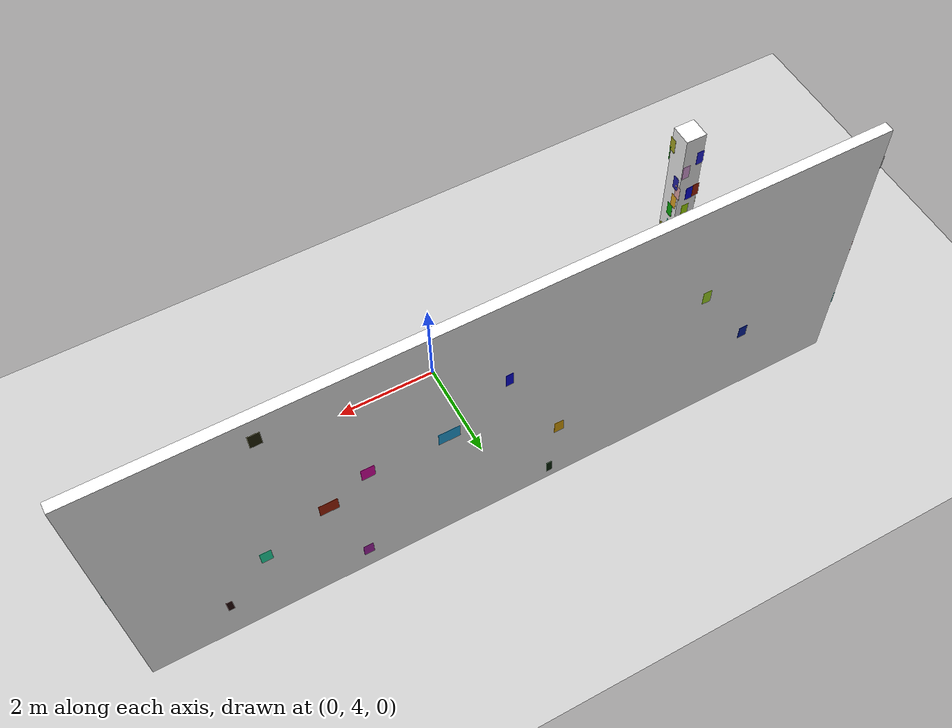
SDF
<sdf version="1.9">
 <world name="default">
  <model name="ground_plane">
   <static>true</static>
   <link name="link">
    <collision name="collision">
     <geometry><plane><normal>0 0 1</normal><size>1 1</size></plane></geometry>
    </collision>
    <visual name="visual">
     <geometry><plane><normal>0 0 1</normal><size>500 500</size></plane></geometry>
     <material>
      <ambient>0.8 0.8 0.8 1</ambient>
      <diffuse>0.8 0.8 0.8 1</diffuse>
      <specular>0.8 0.8 0.8 1</specular>
     </material>
    </visual>
    <inertial>
     <mass>1</mass>
     <inertia><ixx>1</ixx><ixy>0</ixy><ixz>0</ixz><iyy>1</iyy><iyz>0</iyz><izz>1</izz></inertia>
    </inertial>
   </link>
  </model>
  <model name="wall_north">
   <static>true</static>
   <pose>0 7 3 0 0 0</pose>
   <link name="structure">
    <collision name="collision"><geometry><box><size>14 0.2 6</size></box></geometry></collision>
    <visual name="surface">
     <geometry><box><size>14 0.2 6</size></box></geometry>
     <material>
      <ambient>1 1 1 1</ambient>
      <diffuse>1 1 1 1</diffuse>
      <pbr>
       <metal>
        <albedo_map>model://warehouse_textures/materials/textures/wall_north.png</albedo_map>
        <metalness>0</metalness>
        <roughness>1</roughness>
       </metal>
      </pbr>
     </material>
    </visual>
    <visual name="feature_0_0">
     <pose>-7.002 0.05740399791249655 0.7025036751725389 0 0 0</pose>
     <geometry><box><size>0.004 0.06999999999999999 0.3</size></box></geometry>
     <material><ambient>0.95 0.15 0.04 1</ambient><diffuse>0.95 0.15 0.04 1</diffuse></material>
    </visual>
    <visual name="feature_0_1">
     <pose>-7.002 0.07854383397790567 2.2538727229539655 0 0 0</pose>
     <geometry><box><size>0.004 0.06999999999999999 0.3</size></box></geometry>
     <material><ambient>0.04 0.04 0.04 1</ambient><diffuse>0.04 0.04 0.04 1</diffuse></material>
    </visual>
    <visual name="feature_0_2">
     <pose>-7.002 -0.050748433006339494 2.5971247547386653 0 0 0</pose>
     <geometry><box><size>0.004 0.06999999999999999 0.3</size></box></geometry>
     <material><ambient>0.7 0.15 0.7 1</ambient><diffuse>0.7 0.15 0.7 1</diffuse></material>
    </visual>
    <visual name="feature_0_3">
     <pose>-7.002 0.07319288169317882 -1.4738854698375377 0 0 0</pose>
     <geometry><box><size>0.004 0.06999999999999999 0.3</size></box></geometry>
     <material><ambient>0.15 0.7 0.7 1</ambient><diffuse>0.15 0.7 0.7 1</diffuse></material>
    </visual>
    <visual name="feature_0_4">
     <pose>-7.002 0.02419814084115028 0.8926612303974193 0 0 0</pose>
     <geometry><box><size>0.004 0.06999999999999999 0.3</size></box></geometry>
     <material><ambient>0.7 0.7 0.7 1</ambient><diffuse>0.7 0.7 0.7 1</diffuse></material>
    </visual>
    <visual name="feature_0_5">
     <pose>-7.002 -0.01561939305149082 -1.4772465535562793 0 0 0</pose>
     <geometry><box><size>0.004 0.06999999999999999 0.3</size></box></geometry>
     <material><ambient>0.95 0.7 0.7 1</ambient><diffuse>0.95 0.7 0.7 1</diffuse></material>
    </visual>
    <visual name="feature_0_6">
     <pose>-7.002 -0.03776069096096815 2.3207784220638707 0 0 0</pose>
     <geometry><box><size>0.004 0.06999999999999999 0.3</size></box></geometry>
     <material><ambient>0.15 0.95 0.04 1</ambient><diffuse>0.15 0.95 0.04 1</diffuse></material>
    </visual>
    <visual name="feature_0_7">
     <pose>-7.002 -0.06937758499440702 2.1350625783068047 0 0 0</pose>
     <geometry><box><size>0.004 0.06999999999999999 0.3</size></box></geometry>
     <material><ambient>0.7 0.04 0.7 1</ambient><diffuse>0.7 0.04 0.7 1</diffuse></material>
    </visual>
    <visual name="feature_0_8">
     <pose>-7.002 -0.005494628617869715 0.6742356440841863 0 0 0</pose>
     <geometry><box><size>0.004 0.06999999999999999 0.3</size></box></geometry>
     <material><ambient>0.15 0.7 0.15 1</ambient><diffuse>0.15 0.7 0.15 1</diffuse></material>
    </visual>
    <visual name="feature_0_9">
     <pose>-7.002 0.06492972701412435 0.06277169505868763 0 0 0</pose>
     <geometry><box><size>0.004 0.06999999999999999 0.3</size></box></geometry>
     <material><ambient>0.7 0.04 0.04 1</ambient><diffuse>0.7 0.04 0.04 1</diffuse></material>
    </visual>
    <visual name="feature_0_10">
     <pose>-7.002 0.03187456365895723 1.5432750982797598 0 0 0</pose>
     <geometry><box><size>0.004 0.06999999999999999 0.3</size></box></geometry>
     <material><ambient>0.7 0.15 0.95 1</ambient><diffuse>0.7 0.15 0.95 1</diffuse></material>
    </visual>
    <visual name="feature_0_11">
     <pose>-7.002 -0.045730328586155645 -0.6271222171113213 0 0 0</pose>
     <geometry><box><size>0.004 0.06999999999999999 0.3</size></box></geometry>
     <material><ambient>0.95 0.7 0.04 1</ambient><diffuse>0.95 0.7 0.04 1</diffuse></material>
    </visual>
    <visual name="feature_1_0">
     <pose>7.002 0.03522446831923705 1.2735736602150443 0 0 0</pose>
     <geometry><box><size>0.004 0.06999999999999999 0.3</size></box></geometry>
     <material><ambient>0.04 0.04 0.15 1</ambient><diffuse>0.04 0.04 0.15 1</diffuse></material>
    </visual>
    <visual name="feature_1_1">
     <pose>7.002 -0.0469776455105717 0.9024821809548937 0 0 0</pose>
     <geometry><box><size>0.004 0.06999999999999999 0.3</size></box></geometry>
     <material><ambient>0.04 0.04 0.04 1</ambient><diffuse>0.04 0.04 0.04 1</diffuse></material>
    </visual>
    <visual name="feature_1_2">
     <pose>7.002 -0.08157546014427244 1.9879936328129517 0 0 0</pose>
     <geometry><box><size>0.004 0.06999999999999999 0.3</size></box></geometry>
     <material><ambient>0.04 0.95 0.95 1</ambient><diffuse>0.04 0.95 0.95 1</diffuse></material>
    </visual>
    <visual name="feature_1_3">
     <pose>7.002 -0.0359489471036907 -1.746866420652428 0 0 0</pose>
     <geometry><box><size>0.004 0.06999999999999999 0.3</size></box></geometry>
     <material><ambient>0.7 0.7 0.95 1</ambient><diffuse>0.7 0.7 0.95 1</diffuse></material>
    </visual>
    <visual name="feature_1_4">
     <pose>7.002 0.047225878332427765 -0.38483222295266684 0 0 0</pose>
     <geometry><box><size>0.004 0.06999999999999999 0.3</size></box></geometry>
     <material><ambient>0.15 0.95 0.95 1</ambient><diffuse>0.15 0.95 0.95 1</diffuse></material>
    </visual>
    <visual name="feature_1_5">
     <pose>7.002 -0.00879384942152947 -1.5133206622587514 0 0 0</pose>
     <geometry><box><size>0.004 0.06999999999999999 0.3</size></box></geometry>
     <material><ambient>0.04 0.95 0.7 1</ambient><diffuse>0.04 0.95 0.7 1</diffuse></material>
    </visual>
    <visual name="feature_1_6">
     <pose>7.002 0.0777051902753262 0.13805254826223035 0 0 0</pose>
     <geometry><box><size>0.004 0.06999999999999999 0.3</size></box></geometry>
     <material><ambient>0.7 0.95 0.95 1</ambient><diffuse>0.7 0.95 0.95 1</diffuse></material>
    </visual>
    <visual name="feature_1_7">
     <pose>7.002 0.0215522584049017 0.054730310761432754 0 0 0</pose>
     <geometry><box><size>0.004 0.06999999999999999 0.3</size></box></geometry>
     <material><ambient>0.15 0.04 0.7 1</ambient><diffuse>0.15 0.04 0.7 1</diffuse></material>
    </visual>
    <visual name="feature_1_8">
     <pose>7.002 0.03341609340743347 0.1774305171533701 0 0 0</pose>
     <geometry><box><size>0.004 0.06999999999999999 0.3</size></box></geometry>
     <material><ambient>0.04 0.95 0.15 1</ambient><diffuse>0.04 0.95 0.15 1</diffuse></material>
    </visual>
    <visual name="feature_1_9">
     <pose>7.002 -0.018324491610264435 2.0514677380727084 0 0 0</pose>
     <geometry><box><size>0.004 0.06999999999999999 0.3</size></box></geometry>
     <material><ambient>0.04 0.04 0.95 1</ambient><diffuse>0.04 0.04 0.95 1</diffuse></material>
    </visual>
    <visual name="feature_1_10">
     <pose>7.002 -0.021048834978753914 1.1123216580747055 0 0 0</pose>
     <geometry><box><size>0.004 0.06999999999999999 0.3</size></box></geometry>
     <material><ambient>0.15 0.15 0.15 1</ambient><diffuse>0.15 0.15 0.15 1</diffuse></material>
    </visual>
    <visual name="feature_1_11">
     <pose>7.002 -0.020994369180686576 -0.9567640208396138 0 0 0</pose>
     <geometry><box><size>0.004 0.06999999999999999 0.3</size></box></geometry>
     <material><ambient>0.95 0.15 0.15 1</ambient><diffuse>0.95 0.15 0.15 1</diffuse></material>
    </visual>
    <visual name="feature_2_0">
     <pose>-3.7463705665134444 -0.10200000000000001 1.6719955134625675 0 0 0</pose>
     <geometry><box><size>0.3448776181266677 0.004 0.3</size></box></geometry>
     <material><ambient>0.04 0.7 0.7 1</ambient><diffuse>0.04 0.7 0.7 1</diffuse></material>
    </visual>
    <visual name="feature_2_1">
     <pose>-4.87564520115154 -0.10200000000000001 1.7861467148703136 0 0 0</pose>
     <geometry><box><size>0.1276775238052339 0.004 0.3</size></box></geometry>
     <material><ambient>0.15 0.7 0.95 1</ambient><diffuse>0.15 0.7 0.95 1</diffuse></material>
    </visual>
    <visual name="feature_2_2">
     <pose>4.841366774784601 -0.10200000000000001 -1.6677762424896379 0 0 0</pose>
     <geometry><box><size>0.37165318680444903 0.004 0.3</size></box></geometry>
     <material><ambient>0.95 0.04 0.04 1</ambient><diffuse>0.95 0.04 0.04 1</diffuse></material>
    </visual>
    <visual name="feature_2_3">
     <pose>-0.4796735420358935 -0.10200000000000001 -1.5064770531862461 0 0 0</pose>
     <geometry><box><size>0.3642524153653406 0.004 0.3</size></box></geometry>
     <material><ambient>0.15 0.04 0.15 1</ambient><diffuse>0.15 0.04 0.15 1</diffuse></material>
    </visual>
    <visual name="feature_2_4">
     <pose>-0.3446644241147494 -0.10200000000000001 0.574764268523206 0 0 0</pose>
     <geometry><box><size>0.12782794762885477 0.004 0.3</size></box></geometry>
     <material><ambient>0.7 0.95 0.95 1</ambient><diffuse>0.7 0.95 0.95 1</diffuse></material>
    </visual>
    <visual name="feature_2_5">
     <pose>-0.9417978065136889 -0.10200000000000001 -2.2360110182364714 0 0 0</pose>
     <geometry><box><size>0.39611606082923 0.004 0.3</size></box></geometry>
     <material><ambient>0.15 0.15 0.7 1</ambient><diffuse>0.15 0.15 0.7 1</diffuse></material>
    </visual>
    <visual name="feature_2_6">
     <pose>-0.8678799756750291 -0.10200000000000001 1.8241203898199858 0 0 0</pose>
     <geometry><box><size>0.14542062047875087 0.004 0.3</size></box></geometry>
     <material><ambient>0.04 0.04 0.15 1</ambient><diffuse>0.04 0.04 0.15 1</diffuse></material>
    </visual>
    <visual name="feature_2_7">
     <pose>-1.7576227178929766 -0.10200000000000001 -0.32648244934040216 0 0 0</pose>
     <geometry><box><size>0.2118109170490709 0.004 0.3</size></box></geometry>
     <material><ambient>0.15 0.95 0.15 1</ambient><diffuse>0.15 0.95 0.15 1</diffuse></material>
    </visual>
    <visual name="feature_2_8">
     <pose>-5.854685572844656 -0.10200000000000001 -1.5402346275416843 0 0 0</pose>
     <geometry><box><size>0.1568972919745467 0.004 0.3</size></box></geometry>
     <material><ambient>0.7 0.04 0.7 1</ambient><diffuse>0.7 0.04 0.7 1</diffuse></material>
    </visual>
    <visual name="feature_2_9">
     <pose>-4.002903347911203 -0.10200000000000001 0.7465170212490646 0 0 0</pose>
     <geometry><box><size>0.3693178337186339 0.004 0.3</size></box></geometry>
     <material><ambient>0.95 0.7 0.95 1</ambient><diffuse>0.95 0.7 0.95 1</diffuse></material>
    </visual>
    <visual name="feature_2_10">
     <pose>4.446334056606893 -0.10200000000000001 2.597757033441134 0 0 0</pose>
     <geometry><box><size>0.33266853110518313 0.004 0.3</size></box></geometry>
     <material><ambient>0.15 0.95 0.7 1</ambient><diffuse>0.15 0.95 0.7 1</diffuse></material>
    </visual>
    <visual name="feature_2_11">
     <pose>4.964333592438792 -0.10200000000000001 2.4120357996076764 0 0 0</pose>
     <geometry><box><size>0.3133948943335935 0.004 0.3</size></box></geometry>
     <material><ambient>0.15 0.04 0.7 1</ambient><diffuse>0.15 0.04 0.7 1</diffuse></material>
    </visual>
    <visual name="feature_3_0">
     <pose>1.1282435638475423 0.10200000000000001 0.14423615194003592 0 0 0</pose>
     <geometry><box><size>0.3955038056316935 0.004 0.3</size></box></geometry>
     <material><ambient>0.15 0.7 0.95 1</ambient><diffuse>0.15 0.7 0.95 1</diffuse></material>
    </visual>
    <visual name="feature_3_1">
     <pose>-4.857796091694734 0.10200000000000001 -1.1142142219452753 0 0 0</pose>
     <geometry><box><size>0.1734927756511203 0.004 0.3</size></box></geometry>
     <material><ambient>0.04 0.15 0.7 1</ambient><diffuse>0.04 0.15 0.7 1</diffuse></material>
    </visual>
    <visual name="feature_3_2">
     <pose>-0.986825706234459 0.10200000000000001 -1.3138108848722216 0 0 0</pose>
     <geometry><box><size>0.18919522284882473 0.004 0.3</size></box></geometry>
     <material><ambient>0.95 0.7 0.04 1</ambient><diffuse>0.95 0.7 0.04 1</diffuse></material>
    </visual>
    <visual name="feature_3_3">
     <pose>2.5884112058253175 0.10200000000000001 0.1823241996053926 0 0 0</pose>
     <geometry><box><size>0.24418146115547687 0.004 0.3</size></box></geometry>
     <material><ambient>0.95 0.04 0.7 1</ambient><diffuse>0.95 0.04 0.7 1</diffuse></material>
    </visual>
    <visual name="feature_3_4">
     <pose>4.114185387368543 0.10200000000000001 2.5141208712715315 0 0 0</pose>
     <geometry><box><size>0.19915672047099398 0.004 0.3</size></box></geometry>
     <material><ambient>0.15 0.15 0.04 1</ambient><diffuse>0.15 0.15 0.04 1</diffuse></material>
    </visual>
    <visual name="feature_3_5">
     <pose>-3.805344522671366 0.10200000000000001 0.6368814556220714 0 0 0</pose>
     <geometry><box><size>0.16552342569710427 0.004 0.3</size></box></geometry>
     <material><ambient>0.7 0.95 0.15 1</ambient><diffuse>0.7 0.95 0.15 1</diffuse></material>
    </visual>
    <visual name="feature_3_6">
     <pose>3.3352210802083855 0.10200000000000001 -0.3038700329918118 0 0 0</pose>
     <geometry><box><size>0.3380992009920988 0.004 0.3</size></box></geometry>
     <material><ambient>0.7 0.15 0.04 1</ambient><diffuse>0.7 0.15 0.04 1</diffuse></material>
    </visual>
    <visual name="feature_3_7">
     <pose>2.8326043910910697 0.10200000000000001 -2.389874496279892 0 0 0</pose>
     <geometry><box><size>0.19349118028708032 0.004 0.3</size></box></geometry>
     <material><ambient>0.7 0.15 0.7 1</ambient><diffuse>0.7 0.15 0.7 1</diffuse></material>
    </visual>
    <visual name="feature_3_8">
     <pose>5.371310928173304 0.10200000000000001 -1.984964379111334 0 0 0</pose>
     <geometry><box><size>0.11080823919699212 0.004 0.3</size></box></geometry>
     <material><ambient>0.15 0.04 0.04 1</ambient><diffuse>0.15 0.04 0.04 1</diffuse></material>
    </visual>
    <visual name="feature_3_9">
     <pose>-0.8280257225982046 0.10200000000000001 -2.6286080882410996 0 0 0</pose>
     <geometry><box><size>0.11757383931301915 0.004 0.3</size></box></geometry>
     <material><ambient>0.04 0.15 0.04 1</ambient><diffuse>0.04 0.15 0.04 1</diffuse></material>
    </visual>
    <visual name="feature_3_10">
     <pose>0.014371656385049114 0.10200000000000001 0.961100657873351 0 0 0</pose>
     <geometry><box><size>0.13675560995941782 0.004 0.3</size></box></geometry>
     <material><ambient>0.04 0.04 0.95 1</ambient><diffuse>0.04 0.04 0.95 1</diffuse></material>
    </visual>
    <visual name="feature_3_11">
     <pose>4.531343988861354 0.10200000000000001 -0.9169683445239627 0 0 0</pose>
     <geometry><box><size>0.20477298006318828 0.004 0.3</size></box></geometry>
     <material><ambient>0.15 0.95 0.7 1</ambient><diffuse>0.15 0.95 0.7 1</diffuse></material>
    </visual>
   </link>
  </model>
  <model name="column_nw">
   <static>true</static>
   <pose>-4.8 4.8 2.5 0 0 0</pose>
   <link name="structure">
    <collision name="collision"><geometry><box><size>0.4 0.4 5</size></box></geometry></collision>
    <visual name="surface">
     <geometry><box><size>0.4 0.4 5</size></box></geometry>
     <material>
      <ambient>1 1 1 1</ambient>
      <diffuse>1 1 1 1</diffuse>
      <pbr>
       <metal>
        <albedo_map>model://warehouse_textures/materials/textures/column_nw.png</albedo_map>
        <metalness>0</metalness>
        <roughness>1</roughness>
       </metal>
      </pbr>
     </material>
    </visual>
    <visual name="feature_0_0">
     <pose>-0.202 0.13393470103310487 0.8522537983564047 0 0 0</pose>
     <geometry><box><size>0.004 0.13999999999999999 0.3</size></box></geometry>
     <material><ambient>0.15 0.15 0.04 1</ambient><diffuse>0.15 0.15 0.04 1</diffuse></material>
    </visual>
    <visual name="feature_0_1">
     <pose>-0.202 -0.07721439148381189 -1.6065257175357595 0 0 0</pose>
     <geometry><box><size>0.004 0.13999999999999999 0.3</size></box></geometry>
     <material><ambient>0.7 0.04 0.95 1</ambient><diffuse>0.7 0.04 0.95 1</diffuse></material>
    </visual>
    <visual name="feature_0_2">
     <pose>-0.202 0.13552391656976467 -1.5371914113165182 0 0 0</pose>
     <geometry><box><size>0.004 0.1162455707285957 0.3</size></box></geometry>
     <material><ambient>0.15 0.7 0.15 1</ambient><diffuse>0.15 0.7 0.15 1</diffuse></material>
    </visual>
    <visual name="feature_0_3">
     <pose>-0.202 0.12211623996170892 0.9987048883152694 0 0 0</pose>
     <geometry><box><size>0.004 0.13999999999999999 0.3</size></box></geometry>
     <material><ambient>0.95 0.7 0.15 1</ambient><diffuse>0.95 0.7 0.15 1</diffuse></material>
    </visual>
    <visual name="feature_0_4">
     <pose>-0.202 0.10715708197996285 -1.4582482958577831 0 0 0</pose>
     <geometry><box><size>0.004 0.13999999999999999 0.3</size></box></geometry>
     <material><ambient>0.7 0.95 0.04 1</ambient><diffuse>0.7 0.95 0.04 1</diffuse></material>
    </visual>
    <visual name="feature_0_5">
     <pose>-0.202 -0.0209828147140379 0.6782718655230049 0 0 0</pose>
     <geometry><box><size>0.004 0.13999999999999999 0.3</size></box></geometry>
     <material><ambient>0.04 0.7 0.95 1</ambient><diffuse>0.04 0.7 0.95 1</diffuse></material>
    </visual>
    <visual name="feature_0_6">
     <pose>-0.202 0.1287747132211133 -1.900252355879775 0 0 0</pose>
     <geometry><box><size>0.004 0.13999999999999999 0.3</size></box></geometry>
     <material><ambient>0.15 0.15 0.7 1</ambient><diffuse>0.15 0.15 0.7 1</diffuse></material>
    </visual>
    <visual name="feature_0_7">
     <pose>-0.202 -0.10152881759266114 -0.35690510996950664 0 0 0</pose>
     <geometry><box><size>0.004 0.13999999999999999 0.3</size></box></geometry>
     <material><ambient>0.15 0.7 0.95 1</ambient><diffuse>0.15 0.7 0.95 1</diffuse></material>
    </visual>
    <visual name="feature_0_8">
     <pose>-0.202 -0.15320316202315748 -1.8778627196137767 0 0 0</pose>
     <geometry><box><size>0.004 0.12656197979187367 0.3</size></box></geometry>
     <material><ambient>0.04 0.7 0.04 1</ambient><diffuse>0.04 0.7 0.04 1</diffuse></material>
    </visual>
    <visual name="feature_0_9">
     <pose>-0.202 0.01846087805614305 -1.1166516037688805 0 0 0</pose>
     <geometry><box><size>0.004 0.13999999999999999 0.3</size></box></geometry>
     <material><ambient>0.7 0.7 0.7 1</ambient><diffuse>0.7 0.7 0.7 1</diffuse></material>
    </visual>
    <visual name="feature_0_10">
     <pose>-0.202 0.10094495126345873 0.8140546717873876 0 0 0</pose>
     <geometry><box><size>0.004 0.13315775455317694 0.3</size></box></geometry>
     <material><ambient>0.7 0.95 0.7 1</ambient><diffuse>0.7 0.95 0.7 1</diffuse></material>
    </visual>
    <visual name="feature_0_11">
     <pose>-0.202 0.045239910388062354 -0.6517661478975187 0 0 0</pose>
     <geometry><box><size>0.004 0.13999999999999999 0.3</size></box></geometry>
     <material><ambient>0.15 0.95 0.95 1</ambient><diffuse>0.15 0.95 0.95 1</diffuse></material>
    </visual>
    <visual name="feature_1_0">
     <pose>0.202 0.13737913286454792 -1.859604844201789 0 0 0</pose>
     <geometry><box><size>0.004 0.13999999999999999 0.3</size></box></geometry>
     <material><ambient>0.95 0.95 0.04 1</ambient><diffuse>0.95 0.95 0.04 1</diffuse></material>
    </visual>
    <visual name="feature_1_1">
     <pose>0.202 -0.13766811033960769 -1.8523260240356425 0 0 0</pose>
     <geometry><box><size>0.004 0.13999999999999999 0.3</size></box></geometry>
     <material><ambient>0.15 0.04 0.15 1</ambient><diffuse>0.15 0.04 0.15 1</diffuse></material>
    </visual>
    <visual name="feature_1_2">
     <pose>0.202 -0.09506292787777992 -1.4900721708138063 0 0 0</pose>
     <geometry><box><size>0.004 0.13999999999999999 0.3</size></box></geometry>
     <material><ambient>0.15 0.7 0.15 1</ambient><diffuse>0.15 0.7 0.15 1</diffuse></material>
    </visual>
    <visual name="feature_1_3">
     <pose>0.202 -0.0709048764015679 -0.6855965810825415 0 0 0</pose>
     <geometry><box><size>0.004 0.13999999999999999 0.3</size></box></geometry>
     <material><ambient>0.15 0.95 0.15 1</ambient><diffuse>0.15 0.95 0.15 1</diffuse></material>
    </visual>
    <visual name="feature_1_4">
     <pose>0.202 0.08301363444882151 1.3656890042889955 0 0 0</pose>
     <geometry><box><size>0.004 0.13999999999999999 0.3</size></box></geometry>
     <material><ambient>0.15 0.15 0.7 1</ambient><diffuse>0.15 0.15 0.7 1</diffuse></material>
    </visual>
    <visual name="feature_1_5">
     <pose>0.202 0.0987583455398621 0.9099032520145367 0 0 0</pose>
     <geometry><box><size>0.004 0.13999999999999999 0.3</size></box></geometry>
     <material><ambient>0.95 0.7 0.15 1</ambient><diffuse>0.95 0.7 0.15 1</diffuse></material>
    </visual>
    <visual name="feature_1_6">
     <pose>0.202 0.16191791084062654 1.2002203056038008 0 0 0</pose>
     <geometry><box><size>0.004 0.13999999999999999 0.3</size></box></geometry>
     <material><ambient>0.95 0.7 0.7 1</ambient><diffuse>0.95 0.7 0.7 1</diffuse></material>
    </visual>
    <visual name="feature_1_7">
     <pose>0.202 0.05440624466082236 -1.4769591573965015 0 0 0</pose>
     <geometry><box><size>0.004 0.13999999999999999 0.3</size></box></geometry>
     <material><ambient>0.7 0.04 0.7 1</ambient><diffuse>0.7 0.04 0.7 1</diffuse></material>
    </visual>
    <visual name="feature_1_8">
     <pose>0.202 -0.09947985131424963 -0.05944127332707039 0 0 0</pose>
     <geometry><box><size>0.004 0.13999999999999999 0.3</size></box></geometry>
     <material><ambient>0.7 0.7 0.15 1</ambient><diffuse>0.7 0.7 0.15 1</diffuse></material>
    </visual>
    <visual name="feature_1_9">
     <pose>0.202 -0.1609781423351832 2.109784566885449 0 0 0</pose>
     <geometry><box><size>0.004 0.13999999999999999 0.3</size></box></geometry>
     <material><ambient>0.7 0.7 0.15 1</ambient><diffuse>0.7 0.7 0.15 1</diffuse></material>
    </visual>
    <visual name="feature_1_10">
     <pose>0.202 0.07247869900072401 0.18504770577103713 0 0 0</pose>
     <geometry><box><size>0.004 0.13999999999999999 0.3</size></box></geometry>
     <material><ambient>0.15 0.95 0.7 1</ambient><diffuse>0.15 0.95 0.7 1</diffuse></material>
    </visual>
    <visual name="feature_1_11">
     <pose>0.202 0.028116965769920482 0.6048820254032949 0 0 0</pose>
     <geometry><box><size>0.004 0.13999999999999999 0.3</size></box></geometry>
     <material><ambient>0.04 0.7 0.04 1</ambient><diffuse>0.04 0.7 0.04 1</diffuse></material>
    </visual>
    <visual name="feature_2_0">
     <pose>0.021277459400378257 -0.202 1.9199830011559316 0 0 0</pose>
     <geometry><box><size>0.13999999999999999 0.004 0.3</size></box></geometry>
     <material><ambient>0.95 0.7 0.15 1</ambient><diffuse>0.95 0.7 0.15 1</diffuse></material>
    </visual>
    <visual name="feature_2_1">
     <pose>0.09408436232768766 -0.202 2.040929621409317 0 0 0</pose>
     <geometry><box><size>0.1345008847256509 0.004 0.3</size></box></geometry>
     <material><ambient>0.04 0.04 0.95 1</ambient><diffuse>0.04 0.04 0.95 1</diffuse></material>
    </visual>
    <visual name="feature_2_2">
     <pose>0.0013953721320100754 -0.202 0.1194229785962202 0 0 0</pose>
     <geometry><box><size>0.13662478963188207 0.004 0.3</size></box></geometry>
     <material><ambient>0.7 0.95 0.95 1</ambient><diffuse>0.7 0.95 0.95 1</diffuse></material>
    </visual>
    <visual name="feature_2_3">
     <pose>-0.05403124742031236 -0.202 1.5831517474636017 0 0 0</pose>
     <geometry><box><size>0.11524386417548012 0.004 0.3</size></box></geometry>
     <material><ambient>0.7 0.95 0.7 1</ambient><diffuse>0.7 0.95 0.7 1</diffuse></material>
    </visual>
    <visual name="feature_2_4">
     <pose>-0.11023769719893486 -0.202 0.3497836330490891 0 0 0</pose>
     <geometry><box><size>0.13999999999999999 0.004 0.3</size></box></geometry>
     <material><ambient>0.95 0.15 0.04 1</ambient><diffuse>0.95 0.15 0.04 1</diffuse></material>
    </visual>
    <visual name="feature_2_5">
     <pose>-0.16554142154055718 -0.202 -0.9850233819238068 0 0 0</pose>
     <geometry><box><size>0.13999999999999999 0.004 0.3</size></box></geometry>
     <material><ambient>0.95 0.15 0.15 1</ambient><diffuse>0.95 0.15 0.15 1</diffuse></material>
    </visual>
    <visual name="feature_2_6">
     <pose>-0.023522013540198422 -0.202 1.7747717477019957 0 0 0</pose>
     <geometry><box><size>0.13999999999999999 0.004 0.3</size></box></geometry>
     <material><ambient>0.04 0.7 0.15 1</ambient><diffuse>0.04 0.7 0.15 1</diffuse></material>
    </visual>
    <visual name="feature_2_7">
     <pose>0.009042679494871864 -0.202 -0.4030460581592672 0 0 0</pose>
     <geometry><box><size>0.13999999999999999 0.004 0.3</size></box></geometry>
     <material><ambient>0.7 0.95 0.7 1</ambient><diffuse>0.7 0.95 0.7 1</diffuse></material>
    </visual>
    <visual name="feature_2_8">
     <pose>0.11839192769760262 -0.202 -0.9717246568307345 0 0 0</pose>
     <geometry><box><size>0.13999999999999999 0.004 0.3</size></box></geometry>
     <material><ambient>0.15 0.95 0.04 1</ambient><diffuse>0.15 0.95 0.04 1</diffuse></material>
    </visual>
    <visual name="feature_2_9">
     <pose>0.122617023681827 -0.202 -2.092717145428085 0 0 0</pose>
     <geometry><box><size>0.12145057133511926 0.004 0.3</size></box></geometry>
     <material><ambient>0.04 0.15 0.04 1</ambient><diffuse>0.04 0.15 0.04 1</diffuse></material>
    </visual>
    <visual name="feature_2_10">
     <pose>-0.09980524080979576 -0.202 -2.192499315315467 0 0 0</pose>
     <geometry><box><size>0.1106994587277104 0.004 0.3</size></box></geometry>
     <material><ambient>0.7 0.04 0.95 1</ambient><diffuse>0.7 0.04 0.95 1</diffuse></material>
    </visual>
    <visual name="feature_2_11">
     <pose>0.14851881130025538 -0.202 1.881202350439687 0 0 0</pose>
     <geometry><box><size>0.13999999999999999 0.004 0.3</size></box></geometry>
     <material><ambient>0.15 0.7 0.15 1</ambient><diffuse>0.15 0.7 0.15 1</diffuse></material>
    </visual>
    <visual name="feature_3_0">
     <pose>-0.02910887752046415 0.202 -1.8148588809462423 0 0 0</pose>
     <geometry><box><size>0.13999999999999999 0.004 0.3</size></box></geometry>
     <material><ambient>0.7 0.15 0.15 1</ambient><diffuse>0.7 0.15 0.15 1</diffuse></material>
    </visual>
    <visual name="feature_3_1">
     <pose>0.12599126662581875 0.202 -0.3002684309472925 0 0 0</pose>
     <geometry><box><size>0.13999999999999999 0.004 0.3</size></box></geometry>
     <material><ambient>0.15 0.04 0.7 1</ambient><diffuse>0.15 0.04 0.7 1</diffuse></material>
    </visual>
    <visual name="feature_3_2">
     <pose>0.005495658212735427 0.202 0.656697705167268 0 0 0</pose>
     <geometry><box><size>0.13999999999999999 0.004 0.3</size></box></geometry>
     <material><ambient>0.7 0.95 0.04 1</ambient><diffuse>0.7 0.95 0.04 1</diffuse></material>
    </visual>
    <visual name="feature_3_3">
     <pose>0.019326413320022273 0.202 -0.9747280552212942 0 0 0</pose>
     <geometry><box><size>0.13999999999999999 0.004 0.3</size></box></geometry>
     <material><ambient>0.95 0.7 0.15 1</ambient><diffuse>0.95 0.7 0.15 1</diffuse></material>
    </visual>
    <visual name="feature_3_4">
     <pose>0.011296224122826909 0.202 -2.2004318183496268 0 0 0</pose>
     <geometry><box><size>0.13999999999999999 0.004 0.3</size></box></geometry>
     <material><ambient>0.7 0.7 0.15 1</ambient><diffuse>0.7 0.7 0.15 1</diffuse></material>
    </visual>
    <visual name="feature_3_5">
     <pose>-0.04619341807559103 0.202 -0.42670707484016646 0 0 0</pose>
     <geometry><box><size>0.13999999999999999 0.004 0.3</size></box></geometry>
     <material><ambient>0.95 0.7 0.95 1</ambient><diffuse>0.95 0.7 0.95 1</diffuse></material>
    </visual>
    <visual name="feature_3_6">
     <pose>0.1127022021524259 0.202 1.7152254140861931 0 0 0</pose>
     <geometry><box><size>0.13999999999999999 0.004 0.3</size></box></geometry>
     <material><ambient>0.95 0.7 0.95 1</ambient><diffuse>0.95 0.7 0.95 1</diffuse></material>
    </visual>
    <visual name="feature_3_7">
     <pose>-0.03320872568100047 0.202 1.0998764328884398 0 0 0</pose>
     <geometry><box><size>0.13999999999999999 0.004 0.3</size></box></geometry>
     <material><ambient>0.04 0.04 0.95 1</ambient><diffuse>0.04 0.04 0.95 1</diffuse></material>
    </visual>
    <visual name="feature_3_8">
     <pose>-0.16507767980537438 0.202 1.1170126444018136 0 0 0</pose>
     <geometry><box><size>0.13999999999999999 0.004 0.3</size></box></geometry>
     <material><ambient>0.7 0.15 0.04 1</ambient><diffuse>0.7 0.15 0.04 1</diffuse></material>
    </visual>
    <visual name="feature_3_9">
     <pose>0.062795341897625 0.202 -2.1522859068993694 0 0 0</pose>
     <geometry><box><size>0.13999999999999999 0.004 0.3</size></box></geometry>
     <material><ambient>0.15 0.15 0.15 1</ambient><diffuse>0.15 0.15 0.15 1</diffuse></material>
    </visual>
    <visual name="feature_3_10">
     <pose>0.15807074236811278 0.202 -1.099970522292046 0 0 0</pose>
     <geometry><box><size>0.13999999999999999 0.004 0.3</size></box></geometry>
     <material><ambient>0.15 0.04 0.15 1</ambient><diffuse>0.15 0.04 0.15 1</diffuse></material>
    </visual>
    <visual name="feature_3_11">
     <pose>-0.1429518140696484 0.202 1.962910505211224 0 0 0</pose>
     <geometry><box><size>0.13999999999999999 0.004 0.3</size></box></geometry>
     <material><ambient>0.15 0.15 0.95 1</ambient><diffuse>0.15 0.15 0.95 1</diffuse></material>
    </visual>
   </link>
  </model>
  <model name="rack_north">
   <static>true</static>
   <pose>-1 5.4 1.5 0 0 0</pose>
   <link name="structure">
    <collision name="collision"><geometry><box><size>5 0.7 3</size></box></geometry></collision>
    <visual name="surface">
     <geometry><box><size>5 0.7 3</size></box></geometry>
     <material>
      <ambient>1 1 1 1</ambient>
      <diffuse>1 1 1 1</diffuse>
      <pbr>
       <metal>
        <albedo_map>model://warehouse_textures/materials/textures/rack_north.png</albedo_map>
        <metalness>0</metalness>
        <roughness>1</roughness>
       </metal>
      </pbr>
     </material>
    </visual>
    <visual name="feature_0_0">
     <pose>-2.502 -0.029573150370324652 0.13880006899674924 0 0 0</pose>
     <geometry><box><size>0.004 0.12292425916101953 0.3</size></box></geometry>
     <material><ambient>0.95 0.7 0.15 1</ambient><diffuse>0.95 0.7 0.15 1</diffuse></material>
    </visual>
    <visual name="feature_0_1">
     <pose>-2.502 0.05701548514897925 1.1697844234951074 0 0 0</pose>
     <geometry><box><size>0.004 0.11756119427013559 0.3</size></box></geometry>
     <material><ambient>0.95 0.04 0.95 1</ambient><diffuse>0.95 0.04 0.95 1</diffuse></material>
    </visual>
    <visual name="feature_0_2">
     <pose>-2.502 -0.08598049234493321 0.26949987623469385 0 0 0</pose>
     <geometry><box><size>0.004 0.24499999999999997 0.3</size></box></geometry>
     <material><ambient>0.7 0.95 0.95 1</ambient><diffuse>0.7 0.95 0.95 1</diffuse></material>
    </visual>
    <visual name="feature_0_3">
     <pose>-2.502 -0.1659747512603062 0.6932800574901776 0 0 0</pose>
     <geometry><box><size>0.004 0.18408557387412547 0.3</size></box></geometry>
     <material><ambient>0.7 0.95 0.7 1</ambient><diffuse>0.7 0.95 0.7 1</diffuse></material>
    </visual>
    <visual name="feature_0_4">
     <pose>-2.502 0.17200386945019341 -1.1821896962771739 0 0 0</pose>
     <geometry><box><size>0.004 0.24499999999999997 0.3</size></box></geometry>
     <material><ambient>0.15 0.15 0.15 1</ambient><diffuse>0.15 0.15 0.15 1</diffuse></material>
    </visual>
    <visual name="feature_0_5">
     <pose>-2.502 -0.108850261460401 1.1698756570820583 0 0 0</pose>
     <geometry><box><size>0.004 0.1455343665467545 0.3</size></box></geometry>
     <material><ambient>0.04 0.7 0.15 1</ambient><diffuse>0.04 0.7 0.15 1</diffuse></material>
    </visual>
    <visual name="feature_0_6">
     <pose>-2.502 -0.1653773084753318 0.23143712842879594 0 0 0</pose>
     <geometry><box><size>0.004 0.22390722193871482 0.3</size></box></geometry>
     <material><ambient>0.7 0.04 0.04 1</ambient><diffuse>0.7 0.04 0.04 1</diffuse></material>
    </visual>
    <visual name="feature_0_7">
     <pose>-2.502 -0.1907840840440041 -0.8508556895194016 0 0 0</pose>
     <geometry><box><size>0.004 0.18946409553763416 0.3</size></box></geometry>
     <material><ambient>0.7 0.15 0.95 1</ambient><diffuse>0.7 0.15 0.95 1</diffuse></material>
    </visual>
    <visual name="feature_0_8">
     <pose>-2.502 -0.16217808038421036 -0.36978102082191555 0 0 0</pose>
     <geometry><box><size>0.004 0.15582614612938037 0.3</size></box></geometry>
     <material><ambient>0.7 0.15 0.95 1</ambient><diffuse>0.7 0.15 0.95 1</diffuse></material>
    </visual>
    <visual name="feature_0_9">
     <pose>-2.502 -0.28297309882781824 -0.19747052381930352 0 0 0</pose>
     <geometry><box><size>0.004 0.11413284256381422 0.3</size></box></geometry>
     <material><ambient>0.95 0.04 0.04 1</ambient><diffuse>0.95 0.04 0.04 1</diffuse></material>
    </visual>
    <visual name="feature_0_10">
     <pose>-2.502 -0.2854103821323374 0.602937923127294 0 0 0</pose>
     <geometry><box><size>0.004 0.15605401934230534 0.3</size></box></geometry>
     <material><ambient>0.95 0.95 0.7 1</ambient><diffuse>0.95 0.95 0.7 1</diffuse></material>
    </visual>
    <visual name="feature_0_11">
     <pose>-2.502 -0.28464308231019436 0.2772827815091923 0 0 0</pose>
     <geometry><box><size>0.004 0.24499999999999997 0.3</size></box></geometry>
     <material><ambient>0.15 0.7 0.7 1</ambient><diffuse>0.15 0.7 0.7 1</diffuse></material>
    </visual>
    <visual name="feature_1_0">
     <pose>2.502 -0.18731504133686552 1.1437004833245146 0 0 0</pose>
     <geometry><box><size>0.004 0.24499999999999997 0.3</size></box></geometry>
     <material><ambient>0.04 0.04 0.7 1</ambient><diffuse>0.04 0.04 0.7 1</diffuse></material>
    </visual>
    <visual name="feature_1_1">
     <pose>2.502 0.25976017085061215 -0.46502800597763605 0 0 0</pose>
     <geometry><box><size>0.004 0.24499999999999997 0.3</size></box></geometry>
     <material><ambient>0.15 0.04 0.04 1</ambient><diffuse>0.15 0.04 0.04 1</diffuse></material>
    </visual>
    <visual name="feature_1_2">
     <pose>2.502 -0.0315830926473733 0.42809845652314893 0 0 0</pose>
     <geometry><box><size>0.004 0.1866462299241896 0.3</size></box></geometry>
     <material><ambient>0.7 0.95 0.95 1</ambient><diffuse>0.7 0.95 0.95 1</diffuse></material>
    </visual>
    <visual name="feature_1_3">
     <pose>2.502 -0.17837001569697614 -0.2664203790714057 0 0 0</pose>
     <geometry><box><size>0.004 0.24499999999999997 0.3</size></box></geometry>
     <material><ambient>0.95 0.7 0.15 1</ambient><diffuse>0.95 0.7 0.15 1</diffuse></material>
    </visual>
    <visual name="feature_1_4">
     <pose>2.502 -0.22452987986910716 -0.9153372066231843 0 0 0</pose>
     <geometry><box><size>0.004 0.24499999999999997 0.3</size></box></geometry>
     <material><ambient>0.04 0.04 0.95 1</ambient><diffuse>0.04 0.04 0.95 1</diffuse></material>
    </visual>
    <visual name="feature_1_5">
     <pose>2.502 -0.06931985374041702 0.19059778117296533 0 0 0</pose>
     <geometry><box><size>0.004 0.2155840299896677 0.3</size></box></geometry>
     <material><ambient>0.95 0.7 0.04 1</ambient><diffuse>0.95 0.7 0.04 1</diffuse></material>
    </visual>
    <visual name="feature_1_6">
     <pose>2.502 0.21824709364778744 -0.8287769948701678 0 0 0</pose>
     <geometry><box><size>0.004 0.24499999999999997 0.3</size></box></geometry>
     <material><ambient>0.95 0.15 0.15 1</ambient><diffuse>0.95 0.15 0.15 1</diffuse></material>
    </visual>
    <visual name="feature_1_7">
     <pose>2.502 -0.13338444158518448 0.77129343569761 0 0 0</pose>
     <geometry><box><size>0.004 0.2357058221726354 0.3</size></box></geometry>
     <material><ambient>0.7 0.95 0.95 1</ambient><diffuse>0.7 0.95 0.95 1</diffuse></material>
    </visual>
    <visual name="feature_1_8">
     <pose>2.502 -0.268114270496194 -0.03132886127546897 0 0 0</pose>
     <geometry><box><size>0.004 0.24499999999999997 0.3</size></box></geometry>
     <material><ambient>0.95 0.7 0.04 1</ambient><diffuse>0.95 0.7 0.04 1</diffuse></material>
    </visual>
    <visual name="feature_1_9">
     <pose>2.502 -0.19537474725382742 0.491142939287712 0 0 0</pose>
     <geometry><box><size>0.004 0.24499999999999997 0.3</size></box></geometry>
     <material><ambient>0.95 0.95 0.04 1</ambient><diffuse>0.95 0.95 0.04 1</diffuse></material>
    </visual>
    <visual name="feature_1_10">
     <pose>2.502 -0.06585042239077138 0.4173723298479983 0 0 0</pose>
     <geometry><box><size>0.004 0.24499999999999997 0.3</size></box></geometry>
     <material><ambient>0.95 0.95 0.04 1</ambient><diffuse>0.95 0.95 0.04 1</diffuse></material>
    </visual>
    <visual name="feature_1_11">
     <pose>2.502 -0.16842502734465292 0.9584726633081586 0 0 0</pose>
     <geometry><box><size>0.004 0.24499999999999997 0.3</size></box></geometry>
     <material><ambient>0.04 0.7 0.04 1</ambient><diffuse>0.04 0.7 0.04 1</diffuse></material>
    </visual>
    <visual name="feature_2_0">
     <pose>-0.5840455903357769 -0.352 -0.5613433673560703 0 0 0</pose>
     <geometry><box><size>0.20501987666672553 0.004 0.3</size></box></geometry>
     <material><ambient>0.04 0.7 0.15 1</ambient><diffuse>0.04 0.7 0.15 1</diffuse></material>
    </visual>
    <visual name="feature_2_1">
     <pose>0.6915767087318829 -0.352 1.0021285133882052 0 0 0</pose>
     <geometry><box><size>0.16893752273482138 0.004 0.3</size></box></geometry>
     <material><ambient>0.04 0.7 0.95 1</ambient><diffuse>0.04 0.7 0.95 1</diffuse></material>
    </visual>
    <visual name="feature_2_2">
     <pose>2.029838311405889 -0.352 -0.5722880254751255 0 0 0</pose>
     <geometry><box><size>0.29541904159677107 0.004 0.3</size></box></geometry>
     <material><ambient>0.04 0.04 0.7 1</ambient><diffuse>0.04 0.04 0.7 1</diffuse></material>
    </visual>
    <visual name="feature_2_3">
     <pose>0.23052462287796516 -0.352 -0.888646985302221 0 0 0</pose>
     <geometry><box><size>0.12481305794449146 0.004 0.3</size></box></geometry>
     <material><ambient>0.04 0.04 0.7 1</ambient><diffuse>0.04 0.04 0.7 1</diffuse></material>
    </visual>
    <visual name="feature_2_4">
     <pose>-1.8441781745506407 -0.352 -0.37858612700983996 0 0 0</pose>
     <geometry><box><size>0.18555311651424294 0.004 0.3</size></box></geometry>
     <material><ambient>0.15 0.95 0.15 1</ambient><diffuse>0.15 0.95 0.15 1</diffuse></material>
    </visual>
    <visual name="feature_2_5">
     <pose>1.7384514288209414 -0.352 0.290249502048602 0 0 0</pose>
     <geometry><box><size>0.3304291823243878 0.004 0.3</size></box></geometry>
     <material><ambient>0.95 0.04 0.95 1</ambient><diffuse>0.95 0.04 0.95 1</diffuse></material>
    </visual>
    <visual name="feature_2_6">
     <pose>-1.466239124303632 -0.352 1.3270112892173849 0 0 0</pose>
     <geometry><box><size>0.2636566413758429 0.004 0.3</size></box></geometry>
     <material><ambient>0.7 0.15 0.7 1</ambient><diffuse>0.7 0.15 0.7 1</diffuse></material>
    </visual>
    <visual name="feature_2_7">
     <pose>0.7115325307279989 -0.352 -1.1132655313168456 0 0 0</pose>
     <geometry><box><size>0.20366964190961093 0.004 0.3</size></box></geometry>
     <material><ambient>0.04 0.7 0.04 1</ambient><diffuse>0.04 0.7 0.04 1</diffuse></material>
    </visual>
    <visual name="feature_2_8">
     <pose>-0.718177176042051 -0.352 -0.3779103479104101 0 0 0</pose>
     <geometry><box><size>0.38927135481391173 0.004 0.3</size></box></geometry>
     <material><ambient>0.7 0.7 0.15 1</ambient><diffuse>0.7 0.7 0.15 1</diffuse></material>
    </visual>
    <visual name="feature_2_9">
     <pose>1.1708618176688104 -0.352 -0.0646324793945885 0 0 0</pose>
     <geometry><box><size>0.13513229128637097 0.004 0.3</size></box></geometry>
     <material><ambient>0.95 0.04 0.95 1</ambient><diffuse>0.95 0.04 0.95 1</diffuse></material>
    </visual>
    <visual name="feature_2_10">
     <pose>1.3049748559142484 -0.352 0.4029254302401295 0 0 0</pose>
     <geometry><box><size>0.2659012504427085 0.004 0.3</size></box></geometry>
     <material><ambient>0.15 0.95 0.95 1</ambient><diffuse>0.15 0.95 0.95 1</diffuse></material>
    </visual>
    <visual name="feature_2_11">
     <pose>0.4224796172978751 -0.352 0.05463106823392172 0 0 0</pose>
     <geometry><box><size>0.36300842824960544 0.004 0.3</size></box></geometry>
     <material><ambient>0.7 0.15 0.95 1</ambient><diffuse>0.7 0.15 0.95 1</diffuse></material>
    </visual>
    <visual name="feature_3_0">
     <pose>0.07866326841010052 0.352 0.04571854843554268 0 0 0</pose>
     <geometry><box><size>0.14066264460136277 0.004 0.3</size></box></geometry>
     <material><ambient>0.04 0.7 0.04 1</ambient><diffuse>0.04 0.7 0.04 1</diffuse></material>
    </visual>
    <visual name="feature_3_1">
     <pose>-0.1901701449141746 0.352 -0.2680518047297922 0 0 0</pose>
     <geometry><box><size>0.24261883989884833 0.004 0.3</size></box></geometry>
     <material><ambient>0.04 0.04 0.7 1</ambient><diffuse>0.04 0.04 0.7 1</diffuse></material>
    </visual>
    <visual name="feature_3_2">
     <pose>1.363424249642521 0.352 -1.3418454259158725 0 0 0</pose>
     <geometry><box><size>0.36319384680432065 0.004 0.3</size></box></geometry>
     <material><ambient>0.04 0.7 0.7 1</ambient><diffuse>0.04 0.7 0.7 1</diffuse></material>
    </visual>
    <visual name="feature_3_3">
     <pose>2.023614697213761 0.352 1.0718322544135672 0 0 0</pose>
     <geometry><box><size>0.37077799614517426 0.004 0.3</size></box></geometry>
     <material><ambient>0.95 0.7 0.95 1</ambient><diffuse>0.95 0.7 0.95 1</diffuse></material>
    </visual>
    <visual name="feature_3_4">
     <pose>1.4796605253087645 0.352 -1.2334764897738668 0 0 0</pose>
     <geometry><box><size>0.36229579494899955 0.004 0.3</size></box></geometry>
     <material><ambient>0.95 0.15 0.95 1</ambient><diffuse>0.95 0.15 0.95 1</diffuse></material>
    </visual>
    <visual name="feature_3_5">
     <pose>1.1752709713406895 0.352 0.12932308013403282 0 0 0</pose>
     <geometry><box><size>0.13412702743275678 0.004 0.3</size></box></geometry>
     <material><ambient>0.95 0.95 0.7 1</ambient><diffuse>0.95 0.95 0.7 1</diffuse></material>
    </visual>
    <visual name="feature_3_6">
     <pose>-0.6550339533622409 0.352 0.4475285969469158 0 0 0</pose>
     <geometry><box><size>0.11438561159539871 0.004 0.3</size></box></geometry>
     <material><ambient>0.15 0.15 0.04 1</ambient><diffuse>0.15 0.15 0.04 1</diffuse></material>
    </visual>
    <visual name="feature_3_7">
     <pose>-0.381320040318859 0.352 -0.4293797896756202 0 0 0</pose>
     <geometry><box><size>0.3194906855784624 0.004 0.3</size></box></geometry>
     <material><ambient>0.7 0.95 0.04 1</ambient><diffuse>0.7 0.95 0.04 1</diffuse></material>
    </visual>
    <visual name="feature_3_8">
     <pose>-1.6909470294280464 0.352 -0.8387407097167439 0 0 0</pose>
     <geometry><box><size>0.14439827496181434 0.004 0.3</size></box></geometry>
     <material><ambient>0.04 0.15 0.15 1</ambient><diffuse>0.04 0.15 0.15 1</diffuse></material>
    </visual>
    <visual name="feature_3_9">
     <pose>0.44172722095449046 0.352 0.8670259226592236 0 0 0</pose>
     <geometry><box><size>0.3912965271702987 0.004 0.3</size></box></geometry>
     <material><ambient>0.04 0.95 0.04 1</ambient><diffuse>0.04 0.95 0.04 1</diffuse></material>
    </visual>
    <visual name="feature_3_10">
     <pose>1.4430045711975832 0.352 -0.42906358249596976 0 0 0</pose>
     <geometry><box><size>0.32758009204405636 0.004 0.3</size></box></geometry>
     <material><ambient>0.04 0.04 0.15 1</ambient><diffuse>0.04 0.04 0.15 1</diffuse></material>
    </visual>
    <visual name="feature_3_11">
     <pose>-1.7019710155471017 0.352 0.11158948138797053 0 0 0</pose>
     <geometry><box><size>0.34240990343316624 0.004 0.3</size></box></geometry>
     <material><ambient>0.04 0.15 0.04 1</ambient><diffuse>0.04 0.15 0.04 1</diffuse></material>
    </visual>
    <visual name="shelf_marker_0">
     <pose>0 0 -0.8 0 0 0</pose>
     <geometry><box><size>5.005 0.705 0.05</size></box></geometry>
     <material><ambient>0.8 0.6 0.15 1</ambient><diffuse>0.8 0.6 0.15 1</diffuse></material>
    </visual>
    <visual name="shelf_marker_1">
     <geometry><box><size>5.005 0.705 0.05</size></box></geometry>
     <material><ambient>0.8 0.6 0.15 1</ambient><diffuse>0.8 0.6 0.15 1</diffuse></material>
    </visual>
    <visual name="shelf_marker_2">
     <pose>0 0 0.8 0 0 0</pose>
     <geometry><box><size>5.005 0.705 0.05</size></box></geometry>
     <material><ambient>0.8 0.6 0.15 1</ambient><diffuse>0.8 0.6 0.15 1</diffuse></material>
    </visual>
   </link>
  </model>
 </world>
</sdf>
